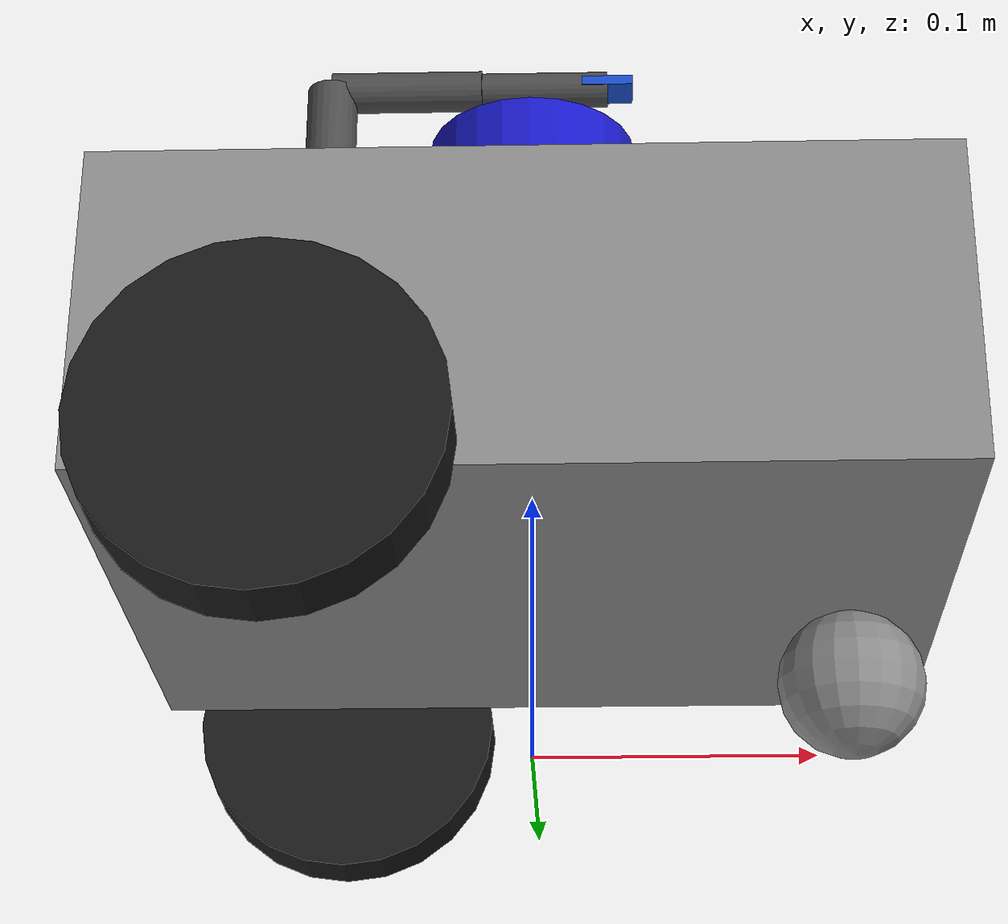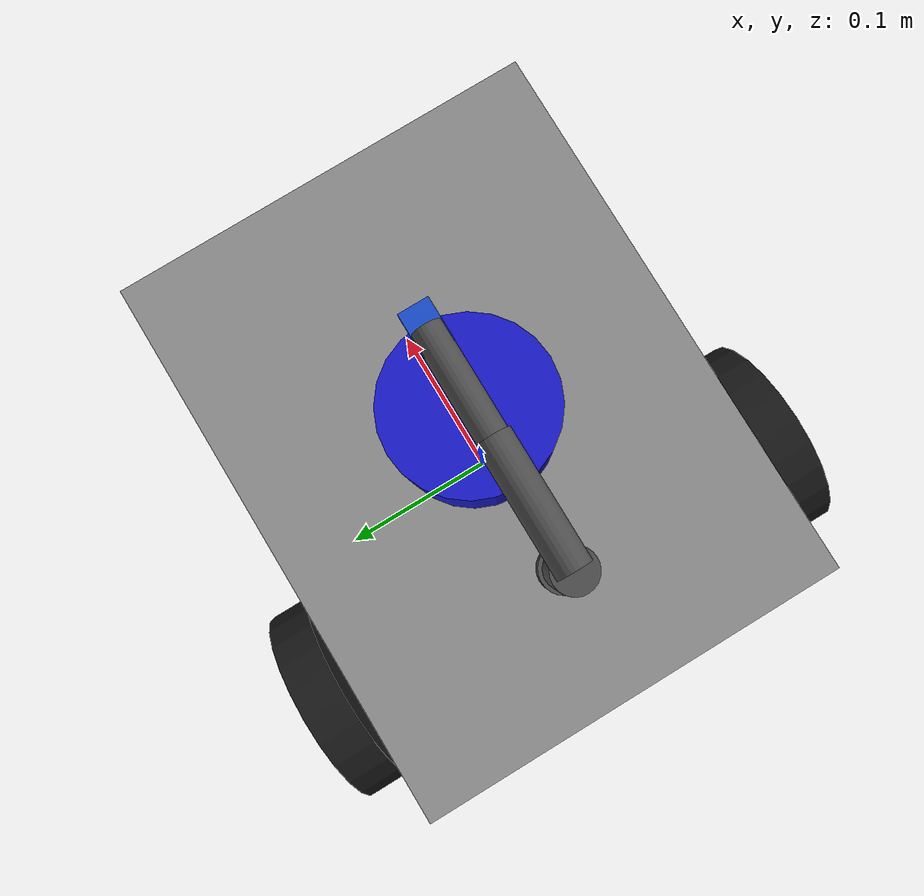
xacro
<?xml version="1.0"?>
<robot xmlns:xacro="http://www.ros.org/wiki/xacro" name="main_agv">

  <!-- ===================== Args ===================== -->
  <xacro:arg name="namespace" default="peer_1"/>
  <xacro:arg name="use_sim"   default="true"/>
  <!-- ctrl_yaml: spawn_vehicle.launch.py가 Python 런타임에서 해석한 절대 경로를 주입.
       $(find ...) 는 ament 인덱스 캐시 의존 → 스테일 경로(예: /mnt/c/...) 생성 가능.
       기본값은 xacro 단독 실행 시 호환성 유지용. -->
  <xacro:arg name="ctrl_yaml" default="$(find aip_main_description)/config/ros2_controllers_base.yaml"/>
  <xacro:property name="ns"       value="$(arg namespace)"/>
  <xacro:property name="use_sim"  value="$(arg use_sim)"/>

  <!-- ===================== Dimensions ===================== -->
  <!-- 차체: 230(W)×300(L)×120(H) mm  확정 (2026-05-19) -->
  <xacro:property name="base_w"    value="0.300"/>  <!-- front-back (세로 300mm) -->
  <xacro:property name="base_d"    value="0.230"/>  <!-- left-right (가로 230mm) -->
  <xacro:property name="base_h"    value="0.120"/>  <!-- height -->
  <!-- 구동부: FIT0186 12V 43.8:1 / 바퀴 지름 120mm / 바퀴 간격 290mm  확정 -->
  <xacro:property name="wheel_r"   value="0.060"/>  <!-- 120mm 지름 ÷ 2 -->
  <xacro:property name="wheel_w"   value="0.025"/>
  <xacro:property name="wheel_x"   value="-0.080"/> <!-- drive axle: rear of center -->
  <xacro:property name="axle_y"    value="0.145"/>  <!-- 290mm ÷ 2 -->
  <!-- BCH-32: 볼 지름 53mm → 반경 26.5mm / 전체높이 39mm / 볼돌출 7.4mm
       섀시 설계에서 바퀴(60mm)와 캐스터(39mm) 단차 21mm 반영 완료
       joint z = caster_r - wheel_r = 0.0265 - 0.060 = -0.0335m → 차체 수평 -->
  <xacro:property name="caster_r"  value="0.0265"/>
  <xacro:property name="lidar_r"   value="0.040"/>
  <xacro:property name="lidar_h"   value="0.060"/>
  <xacro:property name="m_base"    value="1.500"/>
  <!-- FIT0186 모터 1개 205g × 2 = 410g → 휠 링크에 모터 질량 포함 -->
  <xacro:property name="m_wheel"   value="0.205"/>
  <xacro:property name="pi"        value="3.14159265"/>

  <!-- ===================== Inertia helpers ===================== -->
  <xacro:macro name="box_inertia" params="m w d h">
    <inertial>
      <mass value="${m}"/>
      <inertia ixx="${m*(d*d+h*h)/12}" ixy="0" ixz="0"
               iyy="${m*(w*w+h*h)/12}" iyz="0"
               izz="${m*(w*w+d*d)/12}"/>
    </inertial>
  </xacro:macro>

  <xacro:macro name="cyl_inertia" params="m r h">
    <inertial>
      <mass value="${m}"/>
      <inertia ixx="${m*(3*r*r+h*h)/12}" ixy="0" ixz="0"
               iyy="${m*(3*r*r+h*h)/12}" iyz="0"
               izz="${m*r*r/2}"/>
    </inertial>
  </xacro:macro>

  <!-- ===================== Base ===================== -->
  <link name="${ns}/base_footprint"/>

  <joint name="base_joint" type="fixed">
    <parent link="${ns}/base_footprint"/>
    <child  link="${ns}/base_link"/>
    <origin xyz="0 0 ${wheel_r}" rpy="0 0 0"/>
  </joint>

  <link name="${ns}/base_link">
    <xacro:box_inertia m="${m_base}" w="${base_w}" d="${base_d}" h="${base_h}"/>
    <visual>
      <origin xyz="0 0 ${base_h/2}" rpy="0 0 0"/>
      <geometry><box size="${base_w} ${base_d} ${base_h}"/></geometry>
      <material name="grey"><color rgba="0.55 0.55 0.55 1"/></material>
    </visual>
    <collision>
      <origin xyz="0 0 ${base_h/2}" rpy="0 0 0"/>
      <geometry><box size="${base_w} ${base_d} ${base_h}"/></geometry>
    </collision>
  </link>

  <!-- ===================== Wheel macro ===================== -->
  <xacro:macro name="wheel" params="side y_sgn">
    <!-- joint name unprefixed — ros2_control uses this exact string -->
    <joint name="${side}_wheel_joint" type="continuous">
      <parent link="${ns}/base_link"/>
      <child  link="${ns}/${side}_wheel"/>
      <origin xyz="${wheel_x} ${y_sgn * axle_y} 0" rpy="${-pi/2} 0 0"/>
      <axis xyz="0 0 1"/>
      <dynamics damping="0.1" friction="0.1"/>
    </joint>
    <link name="${ns}/${side}_wheel">
      <xacro:cyl_inertia m="${m_wheel}" r="${wheel_r}" h="${wheel_w}"/>
      <visual>
        <geometry><cylinder radius="${wheel_r}" length="${wheel_w}"/></geometry>
        <material name="black"><color rgba="0.1 0.1 0.1 1"/></material>
      </visual>
      <collision>
        <geometry><cylinder radius="${wheel_r}" length="${wheel_w}"/></geometry>
        <surface>
          <friction><ode><mu>1.0</mu><mu2>0.5</mu2></ode></friction>
        </surface>
      </collision>
    </link>
    <gazebo reference="${ns}/${side}_wheel">
      <mu1>1.0</mu1><mu2>0.5</mu2>
      <kp>500000</kp><kd>10</kd>
      <visual>
        <!-- 바퀴 하단이 지면(z=0)과 정확히 일치 → Z-fighting 그림자 artifact 억제 -->
        <cast_shadows>false</cast_shadows>
      </visual>
    </gazebo>
  </xacro:macro>

  <xacro:wheel side="left"  y_sgn="1"/>
  <xacro:wheel side="right" y_sgn="-1"/>

  <!-- Caster (front passive sphere) -->
  <joint name="caster_joint" type="fixed">
    <parent link="${ns}/base_link"/>
    <child  link="${ns}/caster"/>
    <origin xyz="${base_w/2 - caster_r - 0.01} 0 ${caster_r - wheel_r}" rpy="0 0 0"/>
  </joint>
  <link name="${ns}/caster">
    <inertial><mass value="0.010"/>
      <inertia ixx="1e-5" ixy="0" ixz="0" iyy="1e-5" iyz="0" izz="1e-5"/>
    </inertial>
    <visual><geometry><sphere radius="${caster_r}"/></geometry>
      <material name="grey"><color rgba="0.55 0.55 0.55 1"/></material>
    </visual>
    <collision><geometry><sphere radius="${caster_r}"/></geometry>
      <surface><friction><ode><mu>0.0</mu><mu2>0.0</mu2></ode></friction></surface>
    </collision>
  </link>
  <gazebo reference="${ns}/caster"><mu1>0.0</mu1><mu2>0.0</mu2></gazebo>

  <!-- ===================== LiDAR ===================== -->
  <joint name="laser_joint" type="fixed">
    <parent link="${ns}/base_link"/>
    <child  link="${ns}/laser_frame"/>
    <origin xyz="0 0 ${base_h + lidar_h/2 + 0.01}" rpy="0 0 0"/>
  </joint>
  <link name="${ns}/laser_frame">
    <inertial><mass value="0.050"/>
      <inertia ixx="1e-4" ixy="0" ixz="0" iyy="1e-4" iyz="0" izz="1e-4"/>
    </inertial>
    <visual>
      <geometry><cylinder radius="${lidar_r}" length="${lidar_h}"/></geometry>
      <material name="blue"><color rgba="0.1 0.1 0.8 1"/></material>
    </visual>
    <collision>
      <geometry><cylinder radius="${lidar_r}" length="${lidar_h}"/></geometry>
    </collision>
  </link>

  <!-- ===================== IMU ===================== -->
  <joint name="imu_joint" type="fixed">
    <parent link="${ns}/base_link"/>
    <child  link="${ns}/imu_frame"/>
    <origin xyz="0 0 ${base_h/2}" rpy="0 0 0"/>
  </joint>
  <link name="${ns}/imu_frame">
    <inertial><mass value="0.001"/>
      <inertia ixx="1e-6" ixy="0" ixz="0" iyy="1e-6" iyz="0" izz="1e-6"/>
    </inertial>
  </link>

  <joint name="arm_mount_joint" type="fixed">
    <parent link="${ns}/base_link"/>
    <child  link="${ns}/arm_mount"/>
    <origin xyz="-0.08 0 ${base_h}" rpy="0 0 0"/>
  </joint>
  <link name="${ns}/arm_mount">
    <inertial><mass value="0.030"/>
      <inertia ixx="1e-5" ixy="0" ixz="0" iyy="1e-5" iyz="0" izz="1e-5"/>
    </inertial>
    <visual>
      <origin xyz="0 0 0.015" rpy="0 0 0"/>
      <geometry><cylinder radius="0.012" length="0.030"/></geometry>
      <material name="dark_grey"><color rgba="0.3 0.3 0.3 1"/></material>
    </visual>
  </link>

  <!-- Joint 1: Pan (Z축, ±90°) -->
  <joint name="arm_pan_joint" type="revolute">
    <parent link="${ns}/arm_mount"/>
    <child  link="${ns}/arm_link_1"/>
    <origin xyz="0 0 0.030" rpy="0 0 0"/>
    <axis xyz="0 0 1"/>
    <limit lower="-1.5708" upper="1.5708" effort="2.0" velocity="1.0"/>
    <dynamics damping="0.05" friction="0.01"/>
  </joint>
  <link name="${ns}/arm_link_1">
    <inertial><mass value="0.020"/>
      <!-- ODE stability: Kd*dt/I = 0.05*0.004/0.001 = 0.2 < 1 (was 20 with 1e-5 -> unstable) -->
      <inertia ixx="0.001" ixy="0" ixz="0" iyy="0.001" iyz="0" izz="0.001"/>
    </inertial>
    <visual>
      <origin xyz="0 0 0.035" rpy="0 0 0"/>
      <geometry><cylinder radius="0.010" length="0.070"/></geometry>
      <material name="dark_grey"><color rgba="0.3 0.3 0.3 1"/></material>
    </visual>
  </link>

  <!-- Joint 2: Shoulder (Y축, -30°~80°) -->
  <joint name="arm_shoulder_joint" type="revolute">
    <parent link="${ns}/arm_link_1"/>
    <child  link="${ns}/arm_link_2"/>
    <origin xyz="0 0 0.070" rpy="0 0 0"/>
    <axis xyz="0 1 0"/>
    <limit lower="-0.5236" upper="1.3963" effort="2.0" velocity="1.0"/>
    <dynamics damping="2.0" friction="0.5"/>
  </joint>
  <link name="${ns}/arm_link_2">
    <inertial><mass value="0.015"/>
      <inertia ixx="0.001" ixy="0" ixz="0" iyy="0.001" iyz="0" izz="0.001"/>
    </inertial>
    <visual>
      <origin xyz="0.030 0 0" rpy="0 ${pi/2} 0"/>
      <geometry><cylinder radius="0.008" length="0.060"/></geometry>
      <material name="dark_grey"><color rgba="0.3 0.3 0.3 1"/></material>
    </visual>
  </link>

  <!-- Joint 3: Elbow (Y축, -120°~30°) -->
  <joint name="arm_elbow_joint" type="revolute">
    <parent link="${ns}/arm_link_2"/>
    <child  link="${ns}/arm_link_3"/>
    <origin xyz="0.060 0 0" rpy="0 0 0"/>
    <axis xyz="0 1 0"/>
    <limit lower="-2.0944" upper="0.5236" effort="2.0" velocity="1.0"/>
    <dynamics damping="2.0" friction="0.5"/>
  </joint>
  <link name="${ns}/arm_link_3">
    <inertial><mass value="0.010"/>
      <inertia ixx="0.001" ixy="0" ixz="0" iyy="0.001" iyz="0" izz="0.001"/>
    </inertial>
    <visual>
      <origin xyz="0.025 0 0" rpy="0 ${pi/2} 0"/>
      <geometry><cylinder radius="0.007" length="0.050"/></geometry>
      <material name="dark_grey"><color rgba="0.3 0.3 0.3 1"/></material>
    </visual>
  </link>

  <!-- Joint 4: Wrist/Camera tilt (Y축, ±45°) -->
  <joint name="arm_wrist_joint" type="revolute">
    <parent link="${ns}/arm_link_3"/>
    <child  link="${ns}/thermal_frame"/>
    <origin xyz="0.050 0 0" rpy="0 0 0"/>
    <axis xyz="0 1 0"/>
    <limit lower="-0.7854" upper="0.7854" effort="1.0" velocity="1.0"/>
    <dynamics damping="1.0" friction="0.3"/>
  </joint>
  <link name="${ns}/thermal_frame">
    <inertial><mass value="0.005"/>
      <inertia ixx="0.001" ixy="0" ixz="0" iyy="0.001" iyz="0" izz="0.001"/>
    </inertial>
    <visual>
      <origin xyz="0 0 0" rpy="0 0 0"/>
      <geometry><box size="0.020 0.014 0.004"/></geometry>
      <material name="sensor_blue"><color rgba="0.1 0.3 0.8 1"/></material>
    </visual>
  </link>

  <ros2_control name="${ns}_drive" type="system">
    <hardware>
      <xacro:if value="${use_sim}">
        <!-- Sim: Ignition Fortress physics engine acts as hardware -->
        <plugin>gz_ros2_control/GazeboSimSystem</plugin>
      </xacro:if>
      <xacro:unless value="${use_sim}">
        <!-- Real: implement this plugin to read encoders / drive motors.
             Serial port and encoder pins are configured here as params. -->
        <plugin>aip_hardware/MainAGVHardware</plugin>
        <param name="serial_port">/dev/ttyUSB0</param>
        <param name="baud_rate">115200</param>
      </xacro:unless>
    </hardware>
    <!-- Joint names must be IDENTICAL between sim and real URDF -->
    <joint name="left_wheel_joint">
      <command_interface name="velocity">
        <param name="min">-10.0</param>
        <param name="max"> 10.0</param>
      </command_interface>
      <state_interface name="velocity"/>
      <state_interface name="position"/>
    </joint>
    <joint name="right_wheel_joint">
      <command_interface name="velocity">
        <param name="min">-10.0</param>
        <param name="max"> 10.0</param>
      </command_interface>
      <state_interface name="velocity"/>
      <state_interface name="position"/>
    </joint>
    <joint name="arm_pan_joint">
      <command_interface name="velocity">
        <param name="min">-1.0</param>
        <param name="max"> 1.0</param>
      </command_interface>
      <state_interface name="position"/>
      <state_interface name="velocity"/>
    </joint>
    <joint name="arm_shoulder_joint">
      <state_interface name="position">
        <param name="initial_value">0.0</param>
      </state_interface>
    </joint>
    <joint name="arm_elbow_joint">
      <state_interface name="position">
        <param name="initial_value">0.0</param>
      </state_interface>
    </joint>
    <joint name="arm_wrist_joint">
      <state_interface name="position">
        <param name="initial_value">0.0</param>
      </state_interface>
    </joint>
  </ros2_control>

  <!-- ===================== Gazebo / Ignition plugins ===================== -->
  <xacro:if value="${use_sim}">

    <!-- arm_pan_joint ODE stop 소프트닝: CFM>0 → hard stop 해제
         기본 CFM=0(무한 강성)이면 velocity 명령으로 한계에서 탈출 불가.
         stopCfm=0.05: 유한 강성 → 모터 힘으로 한계 탈출 가능 -->
    <gazebo reference="arm_pan_joint">
      <stopCfm>0.05</stopCfm>
      <stopErp>0.8</stopErp>
    </gazebo>

    <!-- ros2_control manager — scoped to /${ns}/ namespace -->
    <gazebo>
      <plugin filename="gz_ros2_control-system"
              name="gz_ros2_control::GazeboSimROS2ControlPlugin">
        <!-- CM 기본 파라미터 (update_rate 등) — gz_ros2_control이 직접 로드 -->
        <parameters>$(find aip_main_description)/config/ros2_controllers_base.yaml</parameters>
        <!-- spawn_vehicle.launch.py가 Python에서 해석한 절대 경로 주입 (스테일 ament 캐시 방지) -->
        <parameters>$(arg ctrl_yaml)</parameters>
        <ros>
          <namespace>/${ns}</namespace>
        </ros>
      </plugin>
    </gazebo>

    <gazebo reference="${ns}/laser_frame">
      <sensor name="${ns}_lidar" type="gpu_lidar">
        <update_rate>10</update_rate>
        <topic>/${ns}/scan_gz</topic>
        <gz_frame_id>${ns}/laser_frame</gz_frame_id>
        <visualize>false</visualize>
        <lidar>
          <scan>
            <horizontal>
              <samples>1000</samples>
              <resolution>1</resolution>
              <min_angle>-2.79253</min_angle>
              <max_angle> 2.79253</max_angle>
            </horizontal>
          </scan>
          <range>
            <min>0.12</min>
            <max>8.0</max>
            <resolution>0.01</resolution>
          </range>
          <noise>
            <type>gaussian</type>
            <mean>0.0</mean>
            <stddev>0.015</stddev>
          </noise>
        </lidar>
      </sensor>
    </gazebo>

    <!-- IMU -->
    <gazebo reference="${ns}/imu_frame">
      <sensor name="${ns}_imu" type="imu">
        <always_on>true</always_on>
        <update_rate>100</update_rate>
        <topic>/${ns}/imu_gz</topic>
        <gz_frame_id>${ns}/imu_frame</gz_frame_id>
        <imu>
          <angular_velocity>
            <x><noise type="gaussian"><mean>0</mean><stddev>0.009</stddev></noise></x>
            <y><noise type="gaussian"><mean>0</mean><stddev>0.009</stddev></noise></y>
            <z><noise type="gaussian"><mean>0</mean><stddev>0.009</stddev></noise></z>
          </angular_velocity>
          <linear_acceleration>
            <x><noise type="gaussian"><mean>0</mean><stddev>0.021</stddev></noise></x>
            <y><noise type="gaussian"><mean>0</mean><stddev>0.021</stddev></noise></y>
            <z><noise type="gaussian"><mean>0</mean><stddev>0.021</stddev></noise></z>
          </linear_acceleration>
        </imu>
      </sensor>
    </gazebo>

  </xacro:if>

</robot>
